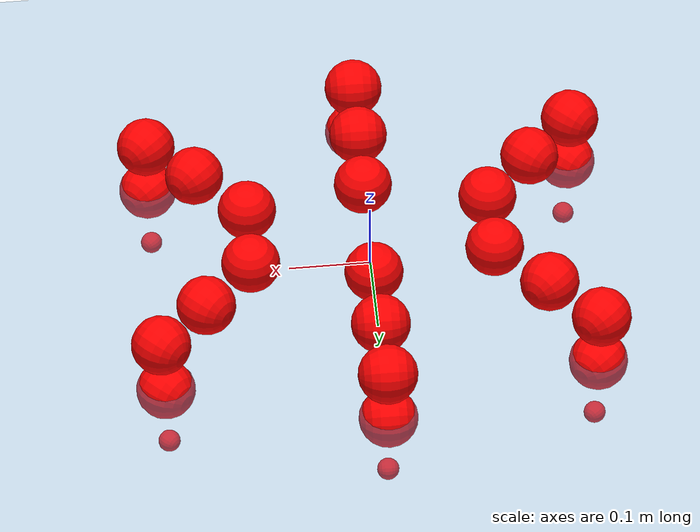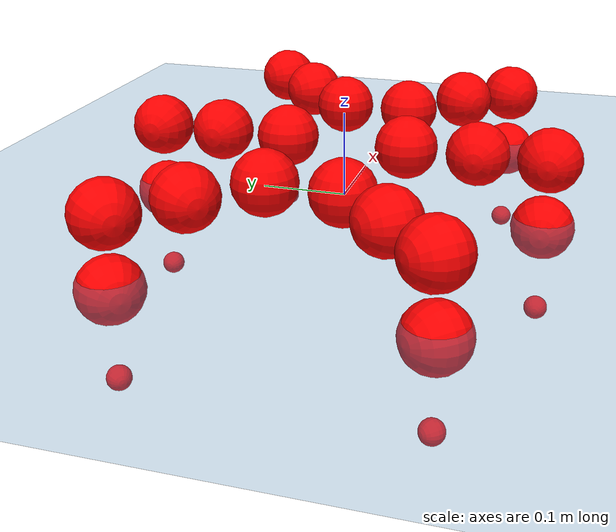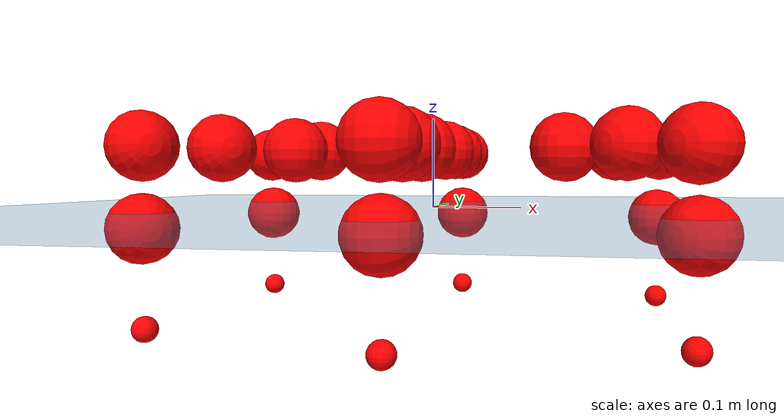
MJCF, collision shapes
<mujoco model="Golem">
  <compiler angle="radian" assetdir="assets" balanceinertia="true" inertiafromgeom="false"/>

  <option timestep="0.005" density="1.2" viscosity="2e-05"/>

  <size nkey="1"/>

  <visual>
    <quality shadowsize="8192"/>
    <map shadowclip="0.5"/>
  </visual>

  <default>
    <default class="/">
      <joint armature="0.01" damping="0.01" frictionloss="0.01"/>
      <geom contype="0" conaffinity="0" group="1" solref="-1000 -80"/>
      <site size="0.01 0.005 0.005" group="5"/>
      <general forcelimited="true" biastype="affine" gainprm="25" biasprm="0 -25 -0.5"/>
      <default class="visual">
        <geom type="mesh" group="2"/>
      </default>
      <default class="collision">
        <geom group="3"/>
      </default>
      <default class="foot">
        <geom size="0.01 0 0" condim="6" group="4" priority="1" solimp="0.015 1 0.01"/>
      </default>
      <default class="reward_collision_sphere">
        <geom group="5" rgba="1 0 0 1"/>
      </default>
    </default>
  </default>

  <asset>
    <texture type="skybox" colorspace="auto" name="//unnamed_texture_0" builtin="gradient" rgb1="0.95 0.95 0.95" rgb2="0.95 0.95 0.95" width="100" height="600"/>
    <texture type="2d" colorspace="auto" name="texplane" builtin="checker" rgb1="0.345 0.575 0.748" rgb2="0.345 0.575 0.748" markrgb="1 1 1" width="512" height="512"/>
    <material name="MatPlane" class="/" texture="texplane" texuniform="true" texrepeat="2 2" specular="0.9"/>
    <mesh name="body" class="/" file="body.stl" scale="0.001 0.001 0.001"/>
    <mesh name="coxa" class="/" file="coxa.stl" scale="0.001 0.001 0.001"/>
    <mesh name="femur" class="/" file="femur.stl" scale="0.001 0.001 0.001"/>
    <mesh name="tibia" class="/" file="tibia.stl" scale="0.001 0.001 0.001"/>
    <mesh name="tarsus" class="/" file="tarsus.stl" scale="0.001 0.001 0.001"/>
  </asset>

  <worldbody>
    <geom name="floor" class="/" size="100 100 0.125" type="plane" group="0" material="MatPlane"/>
    <light name="toplight_shadow" class="/" pos="0 0 5" dir="0.0990148 0.0990148 -0.990148" type="directional" ambient="0.04 0.04 0.04" diffuse="0.55 0.55 0.55" specular="0.12 0.12 0.12"/>
    <light name="toplight_fill" class="/" pos="0 0 5" dir="0.0990148 0.0990148 -0.990148" type="directional" castshadow="false" ambient="0.04 0.04 0.04" diffuse="0.3 0.3 0.3" specular="0.08 0.08 0.08"/>
    <body name="trunk" pos="-7.59367e-05 0.000478796 -0.000853877" quat="1 0.000623518 0.000212348 -0.000618689">
      <inertial pos="-0.000264173 0.000429888 -0.00320642" quat="0.999987 -0.00236055 0.00147593 0.0041751" mass="2.63691" diaginertia="0.0077489 0.00227817 0.010483"/>
      <joint name="//unnamed_joint_0" type="free"/>
      <geom name="//unnamed_geom_1" class="/" pos="0 0 0.0646014" quat="1 0 0 0" type="mesh" rgba="0.9 0.9 0.9 1" mesh="body"/>
      <site name="imu" class="/" pos="0.128457 0.00976049 0.113864" size="0.00900284"/>
      <camera name="track" class="/" pos="0 -1.4864 0" quat="0.707107 0.707107 0 0" mode="trackcom"/>
      <camera name="ego_camera" class="/" pos="0.123273 0 0.10094" quat="-0.5 -0.5 0.5 0.5"/>
      <body name="coxa_RR" pos="-0.169131 -0.061743 0.0651736" quat="0.382791 -0.000467016 -0.00122269 -0.923834">
        <inertial pos="0.00153551 -0.00100124 -2.79405e-05" quat="0.999996 0.00186637 0.000753866 0.00173159" mass="0.151772" diaginertia="0.00786933 0.00236298 0.0109617"/>
        <joint name="coxa_joint_RR" class="/" pos="0 0 0" axis="0.00580164 0.00585782 -0.999966" range="-3.1509 3.15984" armature="0.00866697" damping="0" frictionloss="0.00862408"/>
        <geom name="//unnamed_geom_2" class="/" type="mesh" rgba="0.2 0.2 0.2 1" mesh="coxa"/>
        <geom name="//unnamed_geom_3" class="reward_collision_sphere" size="0.0360113" pos="-0.0284476 0 0"/>
        <body name="femur_RR" pos="0.0556172 0.000426592 0.00065712" quat="0.500086 -0.499185 0.500949 0.499779">
          <inertial pos="0.000167591 0.00246872 0.000132639" quat="0.999993 0.00237327 0.00247852 -0.00140946" mass="0.142864" diaginertia="0.00750227 0.002215 0.0101958"/>
          <joint name="femur_joint_RR" class="/" pos="0 0 0" axis="0.000338272 -7.70211e-05 -1" range="-3.15966 3.15921" armature="0.00988447" damping="0" frictionloss="0.00901423"/>
          <geom name="//unnamed_geom_4" class="/" type="mesh" rgba="0.9 0.9 0.9 1" mesh="femur"/>
          <geom name="//unnamed_geom_5" class="reward_collision_sphere" size="0.0360113"/>
          <body name="tibia_RR" pos="-0.000902414 -0.0809562 -0.00054656" quat="-9.03139e-05 1 -8.72133e-05 0.000119279">
            <inertial pos="0.000391592 0.00255713 -0.000535167" quat="1 -0.00034087 -0.000324995 6.66689e-05" mass="0.142855" diaginertia="0.00748949 0.00222996 0.0102488"/>
            <joint name="tibia_joint_RR" class="/" pos="0 0 0" axis="-0.0070032 -0.0102984 0.999922" range="-3.09098 3.12438" armature="0.00885865" damping="0.00272842" frictionloss="0.010177"/>
            <geom name="//unnamed_geom_6" class="/" type="mesh" rgba="0.2 0.2 0.2 1" mesh="tibia"/>
            <geom name="//unnamed_geom_7" class="reward_collision_sphere" size="0.0360113"/>
            <body name="tarsus_RR" pos="0.0830815 0.0019174 -0.0024683" quat="1 -0.000104697 -9.74117e-07 -6.04313e-05">
              <inertial pos="0.0567198 0.000918695 0.00126366" quat="0.499943 0.499406 0.50025 0.500401" mass="0.142027" diaginertia="0.00740495 0.00223352 0.01052"/>
              <joint name="tarsus_joint_RR" class="/" pos="0 0 0" axis="-0.00334645 -0.00548755 0.999979" range="-3.14387 3.13027" armature="0.00937467" damping="0.00439639" frictionloss="0.00897365"/>
              <geom name="//unnamed_geom_8" class="/" type="mesh" rgba="0.9 0.9 0.9 1" mesh="tarsus"/>
              <geom name="foot_1" class="foot" size="0.00832577" pos="0.106204 0 0" quat="0 -0.707107 0 0.707107"/>
              <geom name="//unnamed_geom_10" class="reward_collision_sphere" size="0.0360113"/>
              <geom name="//unnamed_geom_11" class="reward_collision_sphere" size="0.0135043" pos="0.101937 0 0"/>
              <site name="foot_1" class="foot" pos="0.106204 0 0" quat="0 -0.707107 0 0.707107" size="0.00900284"/>
            </body>
          </body>
        </body>
      </body>
      <body name="coxa_RM" pos="0.00226985 -0.10141 0.0663327" quat="0.706957 3.30847e-05 -0.000179753 -0.707257">
        <inertial pos="0.000425626 0.000248666 -0.00173197" quat="0.999917 0.0115701 -0.00520948 -0.00237042" mass="0.150897" diaginertia="0.00797009 0.00241296 0.0110316"/>
        <joint name="coxa_joint_RM" class="/" pos="0 0 0" axis="0.00850579 0.00662424 -0.999942" range="-3.1358 3.13744" armature="0.00946877" damping="0.0117873" frictionloss="0.00942008"/>
        <geom name="//unnamed_geom_12" class="/" type="mesh" rgba="0.2 0.2 0.2 1" mesh="coxa"/>
        <geom name="//unnamed_geom_13" class="reward_collision_sphere" size="0.0360113" pos="-0.0284476 0 0"/>
        <body name="femur_RM" pos="0.0535875 -0.0014282 0.000467869" quat="0.500022 -0.499927 0.500008 0.500043">
          <inertial pos="-3.17019e-05 0.00110909 -0.000411345" quat="0.999997 0.00108742 -0.000159924 -0.00198461" mass="0.145997" diaginertia="0.00746056 0.00225632 0.0104868"/>
          <joint name="femur_joint_RM" class="/" pos="0 0 0" axis="-5.84966e-05 -6.55926e-05 -1" range="-3.1035 3.13607" armature="0.00955139" damping="0.00947494" frictionloss="0.0100089"/>
          <geom name="//unnamed_geom_14" class="/" type="mesh" rgba="0.9 0.9 0.9 1" mesh="femur"/>
          <geom name="//unnamed_geom_15" class="reward_collision_sphere" size="0.0360113"/>
          <body name="tibia_RM" pos="-0.000467003 -0.0795952 -0.000986869" quat="-6.63811e-06 1 -2.27664e-05 -1.55442e-05">
            <inertial pos="0.000666026 0.000235544 0.00165897" quat="0.999993 0.00186614 0.000680713 0.00320071" mass="0.15035" diaginertia="0.00763283 0.00227683 0.0104906"/>
            <joint name="tibia_joint_RM" class="/" pos="0 0 0" axis="0.00671812 0.00802768 0.999945" range="-3.1527 3.16157" armature="0.00789569" damping="0.012278" frictionloss="0.0100858"/>
            <geom name="//unnamed_geom_16" class="/" type="mesh" rgba="0.2 0.2 0.2 1" mesh="tibia"/>
            <geom name="//unnamed_geom_17" class="reward_collision_sphere" size="0.0360113"/>
            <body name="tarsus_RM" pos="0.0803517 -0.00235627 -0.00041097" quat="1 -0.000395246 -0.000266722 0.000370178">
              <inertial pos="0.0566532 0.000553259 3.76847e-05" quat="0.500038 0.500136 0.499949 0.499877" mass="0.153226" diaginertia="0.00784047 0.00233272 0.0107761"/>
              <joint name="tarsus_joint_RM" class="/" pos="0 0 0" axis="0.000463607 0.00373183 0.999993" range="-3.15657 3.15423" armature="0.00917051" damping="0.00697341" frictionloss="0.00857584"/>
              <geom name="//unnamed_geom_18" class="/" type="mesh" rgba="0.9 0.9 0.9 1" mesh="tarsus"/>
              <geom name="foot_2" class="foot" size="0.00876168" pos="0.106204 0 0" quat="0 -0.707107 0 0.707107"/>
              <geom name="//unnamed_geom_20" class="reward_collision_sphere" size="0.0360113"/>
              <geom name="//unnamed_geom_21" class="reward_collision_sphere" size="0.0135043" pos="0.101937 0 0"/>
              <site name="foot_2" class="foot" pos="0.106204 0 0" quat="0 -0.707107 0 0.707107" size="0.00900284"/>
            </body>
          </body>
        </body>
      </body>
      <body name="coxa_RF" pos="0.16809 -0.0642259 0.066905" quat="0.923689 0.000114128 0.000234514 -0.383144">
        <inertial pos="-0.00233436 0.000552528 -0.00137488" quat="0.999994 0.00289238 0.00133987 -0.00139538" mass="0.145874" diaginertia="0.00794409 0.00233969 0.0108617"/>
        <joint name="coxa_joint_RF" class="/" pos="0 0 0" axis="0.00771143 0.00609107 -0.999952" range="-3.13044 3.12276" armature="0.00922528" damping="0.0216224" frictionloss="0.0100293"/>
        <geom name="//unnamed_geom_22" class="/" type="mesh" rgba="0.2 0.2 0.2 1" mesh="coxa"/>
        <geom name="//unnamed_geom_23" class="reward_collision_sphere" size="0.0360113" pos="-0.0284476 0 0"/>
        <body name="femur_RF" pos="0.0579308 -4.34286e-05 0.000876734" quat="0.499454 -0.499676 0.500011 0.500857">
          <inertial pos="-4.7409e-05 -6.99414e-05 0.00110633" quat="1 -0.000626119 -0.000405443 -0.00037605" mass="0.147277" diaginertia="0.00760086 0.00224652 0.0103865"/>
          <joint name="femur_joint_RF" class="/" pos="0 0 0" axis="-0.000147652 -0.00440884 -0.99999" range="-3.14729 3.13947" armature="0.00932163" damping="0.011368" frictionloss="0.00901695"/>
          <geom name="//unnamed_geom_24" class="/" type="mesh" rgba="0.9 0.9 0.9 1" mesh="femur"/>
          <geom name="//unnamed_geom_25" class="reward_collision_sphere" size="0.0360113"/>
          <body name="tibia_RF" pos="0.00242052 -0.0794769 0.00112221" quat="-0.00040645 1 -0.000133989 7.43665e-05">
            <inertial pos="2.97019e-05 -0.00213658 -0.00184303" quat="0.999937 0.00220026 -0.0107206 -0.00232156" mass="0.140293" diaginertia="0.00749977 0.00221642 0.0104601"/>
            <joint name="tibia_joint_RF" class="/" pos="0 0 0" axis="-0.00169668 0.00995951 0.999949" stiffness="0.00349253" range="-3.13634 3.14732" armature="0.00925687" damping="0" frictionloss="0.00877331"/>
            <geom name="//unnamed_geom_26" class="/" type="mesh" rgba="0.2 0.2 0.2 1" mesh="tibia"/>
            <geom name="//unnamed_geom_27" class="reward_collision_sphere" size="0.0360113"/>
            <body name="tarsus_RF" pos="0.0802918 0.000150464 -0.0014895" quat="1 -5.12384e-05 -2.3278e-05 4.86259e-05">
              <inertial pos="0.055093 -0.000558459 -0.000286636" quat="0.497133 0.502226 0.498487 0.502133" mass="0.147488" diaginertia="0.00772805 0.00222049 0.0104729"/>
              <joint name="tarsus_joint_RF" class="/" pos="0 0 0" axis="-0.0155739 -0.00201513 0.999877" range="-3.13541 3.15734" armature="0.00934829" damping="0.00514101" frictionloss="0.00914014"/>
              <geom name="//unnamed_geom_28" class="/" type="mesh" rgba="0.9 0.9 0.9 1" mesh="tarsus"/>
              <geom name="foot_3" class="foot" size="0.00878287" pos="0.106204 0 0" quat="0 -0.707107 0 0.707107"/>
              <geom name="//unnamed_geom_30" class="reward_collision_sphere" size="0.0360113"/>
              <geom name="//unnamed_geom_31" class="reward_collision_sphere" size="0.0135043" pos="0.101937 0 0"/>
              <site name="foot_3" class="foot" pos="0.106204 0 0" quat="0 -0.707107 0 0.707107" size="0.00900284"/>
            </body>
          </body>
        </body>
      </body>
      <body name="coxa_LR" pos="-0.168467 0.0625651 0.0667892" quat="0.38323 0.000643452 -0.000700855 0.923652">
        <inertial pos="0.000261273 0.00162452 -0.00176947" quat="0.999992 0.0010135 -0.00321227 0.00206872" mass="0.143689" diaginertia="0.0076987 0.00221944 0.010378"/>
        <joint name="coxa_joint_LR" class="/" pos="0 0 0" axis="0.00526732 -0.0111314 -0.999924" range="-3.13124 3.18552" armature="0.00914386" damping="0.0102403" frictionloss="0.00958962"/>
        <geom name="//unnamed_geom_32" class="/" type="mesh" rgba="0.2 0.2 0.2 1" mesh="coxa"/>
        <geom name="//unnamed_geom_33" class="reward_collision_sphere" size="0.0360113" pos="-0.0284476 0 0"/>
        <body name="femur_LR" pos="0.0571181 -0.00061789 -0.000412252" quat="0.499931 -0.499949 0.500282 0.499839">
          <inertial pos="9.89647e-05 0.00120125 -0.001037" quat="0.999923 0.000944131 -0.00523109 0.0112156" mass="0.148367" diaginertia="0.00790854 0.00232487 0.0104909"/>
          <joint name="femur_joint_LR" class="/" pos="0 0 0" axis="0.00599621 -0.0126418 0.999902" range="-3.13543 3.12431" armature="0.0101399" damping="0.0055464" frictionloss="0.0090599"/>
          <geom name="//unnamed_geom_34" class="/" type="mesh" rgba="0.9 0.9 0.9 1" mesh="femur"/>
          <geom name="//unnamed_geom_35" class="reward_collision_sphere" size="0.0360113"/>
          <body name="tibia_LR" pos="0.00137943 -0.0810761 -0.00249375" quat="-0.000215157 1 -0.000375789 -6.71751e-05">
            <inertial pos="-0.000168314 -0.000839007 0.00178634" quat="0.999983 -0.00109533 0.00556551 0.00098786" mass="0.14829" diaginertia="0.00750508 0.00223082 0.0104376"/>
            <joint name="tibia_joint_LR" class="/" pos="0 0 0" axis="0.000428181 0.00219822 -0.999997" range="-3.09051 3.16654" armature="0.00816842" damping="0.00552694" frictionloss="0.00898874"/>
            <geom name="//unnamed_geom_36" class="/" type="mesh" rgba="0.2 0.2 0.2 1" mesh="tibia"/>
            <geom name="//unnamed_geom_37" class="reward_collision_sphere" size="0.0360113"/>
            <body name="tarsus_LR" pos="0.0818645 0.000736795 0.00160061" quat="1 3.91004e-06 3.99224e-05 4.65179e-05">
              <inertial pos="0.0579966 -0.00179939 -0.000630396" quat="0.499963 0.499574 0.500586 0.499877" mass="0.143362" diaginertia="0.00776504 0.00236968 0.010622"/>
              <joint name="tarsus_joint_LR" class="/" pos="0 0 0" axis="0.00189788 0.00373465 -0.999991" range="-3.12146 3.15149" armature="0.00901068" damping="0.00181061" frictionloss="0.00877894"/>
              <geom name="//unnamed_geom_38" class="/" type="mesh" rgba="0.9 0.9 0.9 1" mesh="tarsus"/>
              <geom name="foot_4" class="foot" size="0.00916746" pos="0.106204 0 0" quat="0.707107 0 -0.707107 0"/>
              <geom name="//unnamed_geom_40" class="reward_collision_sphere" size="0.0360113"/>
              <geom name="//unnamed_geom_41" class="reward_collision_sphere" size="0.0135043" pos="0.101937 0 0"/>
              <site name="foot_4" class="foot" pos="0.106204 0 0" quat="0.707107 0 -0.707107 0" size="0.00900284"/>
            </body>
          </body>
        </body>
      </body>
      <body name="coxa_LM" pos="0.00180397 0.0971807 0.0675169" quat="0.70661 0.000249132 -0.000348061 0.707603">
        <inertial pos="0.000293704 0.000188046 -0.00184895" quat="0.999995 -0.00221464 -0.000551746 -0.00235321" mass="0.145266" diaginertia="0.00753441 0.00224544 0.0103374"/>
        <joint name="coxa_joint_LM" class="/" pos="0 0 0" axis="0.00178337 -0.00191871 -0.999997" range="-3.12552 3.12934" armature="0.00856157" damping="0.00268698" frictionloss="0.00895815"/>
        <geom name="//unnamed_geom_42" class="/" type="mesh" rgba="0.2 0.2 0.2 1" mesh="coxa"/>
        <geom name="//unnamed_geom_43" class="reward_collision_sphere" size="0.0360113" pos="-0.0284476 0 0"/>
        <body name="femur_LM" pos="0.0532285 0.00057528 0.000174658" quat="0.500036 -0.499907 0.500021 0.500036">
          <inertial pos="-0.00136626 -0.000485684 -0.00269707" quat="0.999973 -0.0071276 -0.00184511 -0.000448547" mass="0.145501" diaginertia="0.00770698 0.00227464 0.0105762"/>
          <joint name="femur_joint_LM" class="/" pos="0 0 0" axis="0.000629059 0.000828098 0.999999" range="-3.16023 3.08768" armature="0.0087599" damping="0" frictionloss="0.00811839"/>
          <geom name="//unnamed_geom_44" class="/" type="mesh" rgba="0.9 0.9 0.9 1" mesh="femur"/>
          <geom name="//unnamed_geom_45" class="reward_collision_sphere" size="0.0360113"/>
          <body name="tibia_LM" pos="0.000366012 -0.0776226 0.000975055" quat="-6.37652e-05 1 -6.02847e-06 9.93098e-05">
            <inertial pos="-0.000436457 -0.000650965 0.000181061" quat="0.999997 0.00174796 -0.00194763 -0.000363869" mass="0.141643" diaginertia="0.00742 0.00220099 0.0101596"/>
            <joint name="tibia_joint_LM" class="/" pos="0 0 0" axis="0.0107865 -0.00155442 -0.999941" range="-3.10328 3.13918" armature="0.0101954" damping="0" frictionloss="0.00981528"/>
            <geom name="//unnamed_geom_46" class="/" type="mesh" rgba="0.2 0.2 0.2 1" mesh="tibia"/>
            <geom name="//unnamed_geom_47" class="reward_collision_sphere" size="0.0360113"/>
            <body name="tarsus_LM" pos="0.0843697 1.52345e-05 -0.000888471" quat="1 0.00014127 -6.28546e-05 -0.000120022">
              <inertial pos="0.057365 -0.00191206 -0.000201596" quat="0.499997 0.500003 0.500011 0.499988" mass="0.140996" diaginertia="0.00751363 0.00212203 0.0102494"/>
              <joint name="tarsus_joint_LM" class="/" pos="0 0 0" axis="-0.0016893 -0.00167938 -0.999997" stiffness="0.0109871" range="-3.13536 3.13476" armature="0.00923892" damping="0.0218725" frictionloss="0.0101584"/>
              <geom name="//unnamed_geom_48" class="/" type="mesh" rgba="0.9 0.9 0.9 1" mesh="tarsus"/>
              <geom name="foot_5" class="foot" size="0.00928912" pos="0.106204 0 0" quat="0.707107 0 -0.707107 0"/>
              <geom name="//unnamed_geom_50" class="reward_collision_sphere" size="0.0360113"/>
              <geom name="//unnamed_geom_51" class="reward_collision_sphere" size="0.0135043" pos="0.101937 0 0"/>
              <site name="foot_5" class="foot" pos="0.106204 0 0" quat="0.707107 0 -0.707107 0" size="0.00900284"/>
            </body>
          </body>
        </body>
      </body>
      <body name="coxa_LF" pos="0.16952 0.0603057 0.0656905" quat="0.924016 0.000113083 5.60268e-05 0.382355">
        <inertial pos="-0.00220274 -0.00252701 -0.000971405" quat="0.999986 -0.000302098 0.0051344 0.000975418" mass="0.142669" diaginertia="0.00750899 0.0021464 0.0104564"/>
        <joint name="coxa_joint_LF" class="/" pos="0 0 0" axis="-0.00306369 -0.00806364 -0.999963" range="-3.14576 3.13936" armature="0.00853374" damping="0.00250172" frictionloss="0.00831704"/>
        <geom name="//unnamed_geom_52" class="/" type="mesh" rgba="0.2 0.2 0.2 1" mesh="coxa"/>
        <geom name="//unnamed_geom_53" class="reward_collision_sphere" size="0.0360113" pos="-0.0284476 0 0"/>
        <body name="femur_LF" pos="0.0563016 0.0027117 0.000804848" quat="0.499829 -0.50045 0.499676 0.500045">
          <inertial pos="0.000127336 -0.000568023 -0.00107862" quat="1 -0.000611665 0.000411515 0.000318092" mass="0.140181" diaginertia="0.00722615 0.00220832 0.0101873"/>
          <joint name="femur_joint_LF" class="/" pos="0 0 0" axis="0.0126848 0.00315711 0.999915" stiffness="0.000593583" range="-3.13534 3.17278" armature="0.00866693" damping="0.00853219" frictionloss="0.00895203"/>
          <geom name="//unnamed_geom_54" class="/" type="mesh" rgba="0.9 0.9 0.9 1" mesh="femur"/>
          <geom name="//unnamed_geom_55" class="reward_collision_sphere" size="0.0360113"/>
          <body name="tibia_LF" pos="-0.000537502 -0.0808392 -0.000512198" quat="9.08591e-06 1 9.39041e-05 7.01006e-05">
            <inertial pos="0.000565475 0.00246855 -1.87732e-05" quat="0.999997 -0.00197623 -0.00102602 -0.00118511" mass="0.149072" diaginertia="0.00765683 0.00228359 0.0105433"/>
            <joint name="tibia_joint_LF" class="/" pos="0 0 0" axis="-0.00449869 -0.00090422 -0.999989" range="-3.12932 3.1053" armature="0.00939951" damping="0.0025749" frictionloss="0.00852996"/>
            <geom name="//unnamed_geom_56" class="/" type="mesh" rgba="0.2 0.2 0.2 1" mesh="tibia"/>
            <geom name="//unnamed_geom_57" class="reward_collision_sphere" size="0.0360113"/>
            <body name="tarsus_LF" pos="0.0840496 -0.00062749 -0.00253472" quat="1 -7.90361e-05 -2.92793e-06 -6.40448e-05">
              <inertial pos="0.055578 -0.000760141 0.00112601" quat="0.502092 0.5049 0.504034 0.488804" mass="0.1468" diaginertia="0.00769987 0.00225765 0.010435"/>
              <joint name="tarsus_joint_LF" class="/" pos="0 0 0" axis="-0.0074939 0.00883635 -0.999933" stiffness="0.0288596" range="-3.1441 3.11317" armature="0.00898652" damping="0.03256" frictionloss="0.00914803"/>
              <geom name="//unnamed_geom_58" class="/" type="mesh" rgba="0.9 0.9 0.9 1" mesh="tarsus"/>
              <geom name="foot_6" class="foot" size="0.00865153" pos="0.106204 0 0" quat="0.707107 0 -0.707107 0"/>
              <geom name="//unnamed_geom_60" class="reward_collision_sphere" size="0.0360113"/>
              <geom name="//unnamed_geom_61" class="reward_collision_sphere" size="0.0135043" pos="0.101937 0 0"/>
              <site name="foot_6" class="foot" pos="0.106204 0 0" quat="0.707107 0 -0.707107 0" size="0.00900284"/>
            </body>
          </body>
        </body>
      </body>
    </body>
  </worldbody>

  <contact>
    <pair class="/" geom1="floor" geom2="foot_1" name="//unnamed_contact_0"/>
    <pair class="/" geom1="floor" geom2="foot_2" name="//unnamed_contact_1"/>
    <pair class="/" geom1="floor" geom2="foot_3" name="//unnamed_contact_2"/>
    <pair class="/" geom1="floor" geom2="foot_4" name="//unnamed_contact_3"/>
    <pair class="/" geom1="floor" geom2="foot_5" name="//unnamed_contact_4"/>
    <pair class="/" geom1="floor" geom2="foot_6" name="//unnamed_contact_5"/>
  </contact>

  <actuator>
    <general name="coxa_joint_RR" class="/" joint="coxa_joint_RR" forcerange="-6.55773 6.55773" gainprm="21.9626" biasprm="0 -21.9626 -0.456001"/>
    <general name="femur_joint_RR" class="/" joint="femur_joint_RR" forcerange="-6.31371 6.31371" gainprm="21.9626" biasprm="0 -21.9626 -0.456001"/>
    <general name="tibia_joint_RR" class="/" joint="tibia_joint_RR" forcerange="-6.62891 6.62891" gainprm="21.9626" biasprm="0 -21.9626 -0.456001"/>
    <general name="tarsus_joint_RR" class="/" joint="tarsus_joint_RR" forcerange="-7.01876 7.01876" gainprm="21.9626" biasprm="0 -21.9626 -0.456001"/>
    <general name="coxa_joint_RM" class="/" joint="coxa_joint_RM" forcerange="-6.75532 6.75532" gainprm="21.9626" biasprm="0 -21.9626 -0.456001"/>
    <general name="femur_joint_RM" class="/" joint="femur_joint_RM" forcerange="-7.02826 7.02826" gainprm="21.9626" biasprm="0 -21.9626 -0.456001"/>
    <general name="tibia_joint_RM" class="/" joint="tibia_joint_RM" forcerange="-6.31363 6.31363" gainprm="21.9626" biasprm="0 -21.9626 -0.456001"/>
    <general name="tarsus_joint_RM" class="/" joint="tarsus_joint_RM" forcerange="-6.43295 6.43295" gainprm="21.9626" biasprm="0 -21.9626 -0.456001"/>
    <general name="coxa_joint_RF" class="/" joint="coxa_joint_RF" forcerange="-6.13054 6.13054" gainprm="21.9626" biasprm="0 -21.9626 -0.456001"/>
    <general name="femur_joint_RF" class="/" joint="femur_joint_RF" forcerange="-6.52338 6.52338" gainprm="21.9626" biasprm="0 -21.9626 -0.456001"/>
    <general name="tibia_joint_RF" class="/" joint="tibia_joint_RF" forcerange="-6.34795 6.34795" gainprm="21.9626" biasprm="0 -21.9626 -0.456001"/>
    <general name="tarsus_joint_RF" class="/" joint="tarsus_joint_RF" forcerange="-6.45885 6.45885" gainprm="21.9626" biasprm="0 -21.9626 -0.456001"/>
    <general name="coxa_joint_LR" class="/" joint="coxa_joint_LR" forcerange="-6.49041 6.49041" gainprm="21.9626" biasprm="0 -21.9626 -0.456001"/>
    <general name="femur_joint_LR" class="/" joint="femur_joint_LR" forcerange="-6.61256 6.61256" gainprm="21.9626" biasprm="0 -21.9626 -0.456001"/>
    <general name="tibia_joint_LR" class="/" joint="tibia_joint_LR" forcerange="-6.50084 6.50084" gainprm="21.9626" biasprm="0 -21.9626 -0.456001"/>
    <general name="tarsus_joint_LR" class="/" joint="tarsus_joint_LR" forcerange="-6.70365 6.70365" gainprm="21.9626" biasprm="0 -21.9626 -0.456001"/>
    <general name="coxa_joint_LM" class="/" joint="coxa_joint_LM" forcerange="-6.7842 6.7842" gainprm="21.9626" biasprm="0 -21.9626 -0.456001"/>
    <general name="femur_joint_LM" class="/" joint="femur_joint_LM" forcerange="-6.74321 6.74321" gainprm="21.9626" biasprm="0 -21.9626 -0.456001"/>
    <general name="tibia_joint_LM" class="/" joint="tibia_joint_LM" forcerange="-6.5972 6.5972" gainprm="21.9626" biasprm="0 -21.9626 -0.456001"/>
    <general name="tarsus_joint_LM" class="/" joint="tarsus_joint_LM" forcerange="-6.40671 6.40671" gainprm="21.9626" biasprm="0 -21.9626 -0.456001"/>
    <general name="coxa_joint_LF" class="/" joint="coxa_joint_LF" forcerange="-6.55807 6.55807" gainprm="21.9626" biasprm="0 -21.9626 -0.456001"/>
    <general name="femur_joint_LF" class="/" joint="femur_joint_LF" forcerange="-6.61343 6.61343" gainprm="21.9626" biasprm="0 -21.9626 -0.456001"/>
    <general name="tibia_joint_LF" class="/" joint="tibia_joint_LF" forcerange="-6.49719 6.49719" gainprm="21.9626" biasprm="0 -21.9626 -0.456001"/>
    <general name="tarsus_joint_LF" class="/" joint="tarsus_joint_LF" forcerange="-6.5959 6.5959" gainprm="21.9626" biasprm="0 -21.9626 -0.456001"/>
  </actuator>

  <sensor>
    <gyro site="imu" name="imu_angular_velocity"/>
    <velocimeter site="imu" name="imu_linear_velocity"/>
    <framelinvel objtype="site" objname="foot_1" name="foot_1_global_linear_velocity"/>
    <framelinvel objtype="site" objname="foot_2" name="foot_2_global_linear_velocity"/>
    <framelinvel objtype="site" objname="foot_3" name="foot_3_global_linear_velocity"/>
    <framelinvel objtype="site" objname="foot_4" name="foot_4_global_linear_velocity"/>
    <framelinvel objtype="site" objname="foot_5" name="foot_5_global_linear_velocity"/>
    <framelinvel objtype="site" objname="foot_6" name="foot_6_global_linear_velocity"/>
  </sensor>

  <keyframe>
    <key name="home" qpos="0 0 0.1457 1 0 0 0 0 0 0 0 0 0 0 0 0 0 0 0 0 0 0 0 0 0 0 0 0 0 0 0"/>
  </keyframe>
</mujoco>
